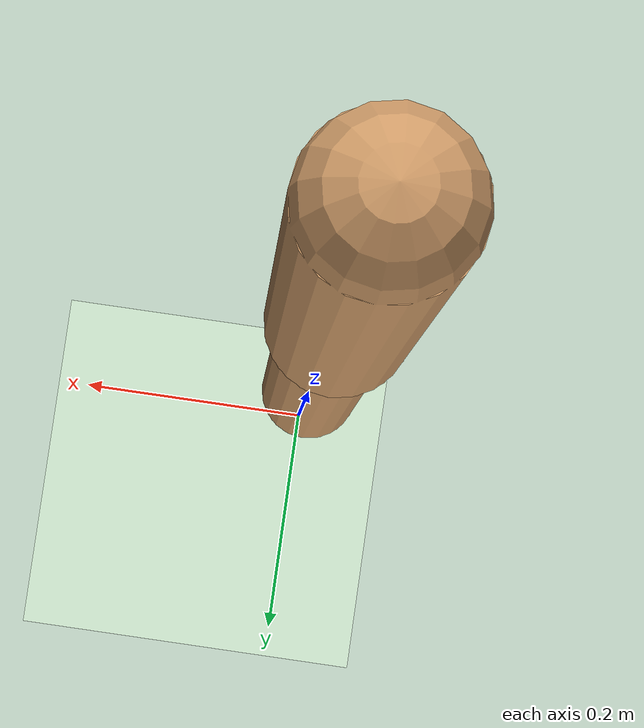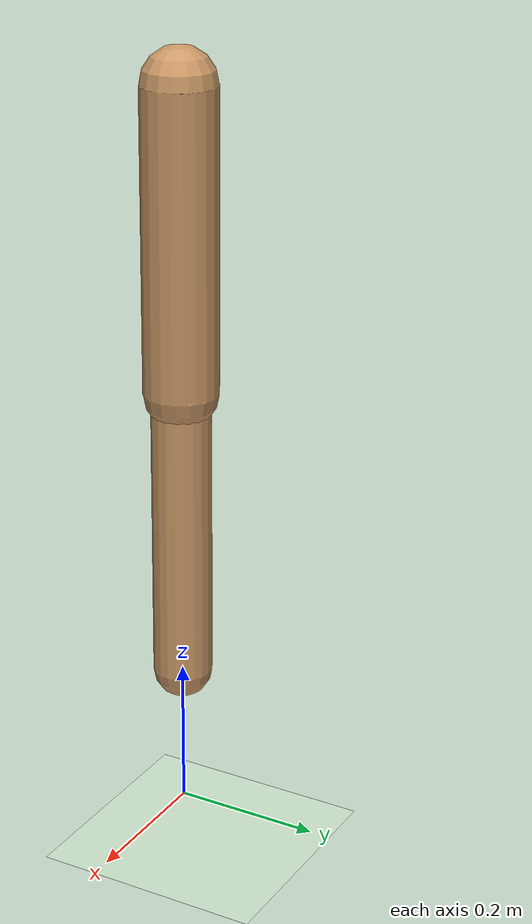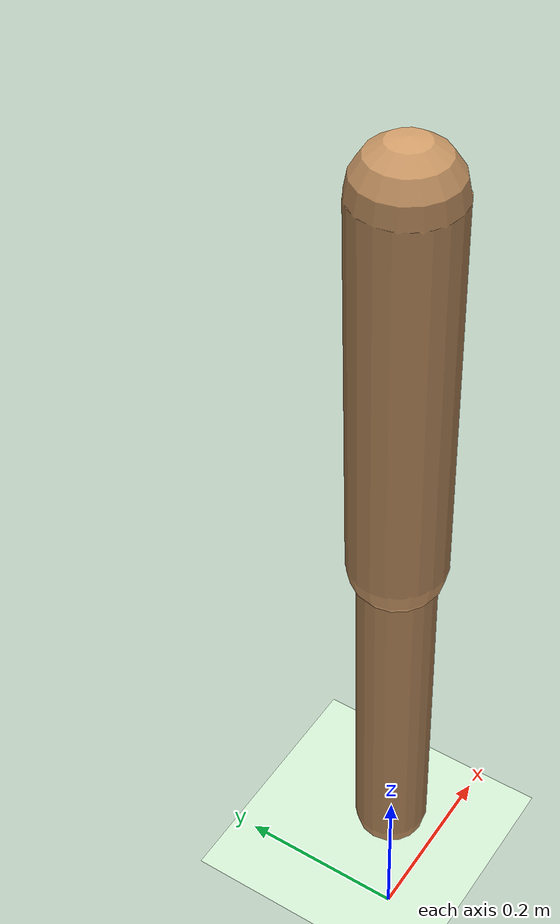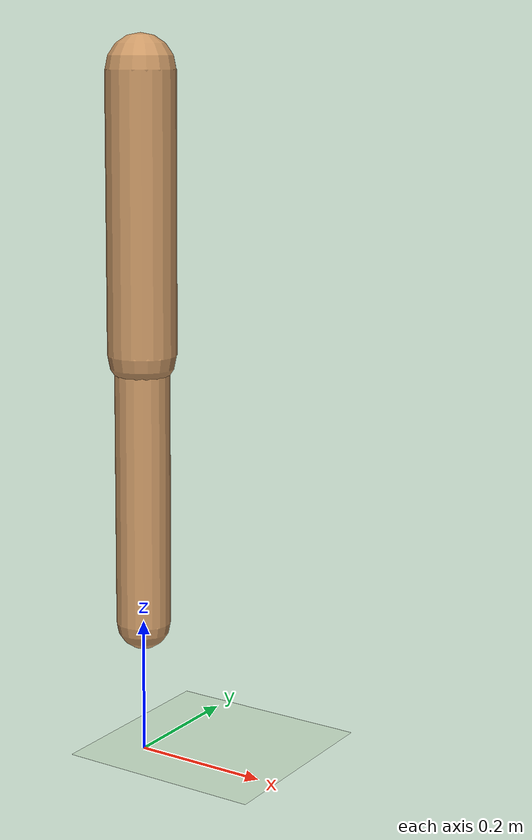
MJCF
<mujoco model="bipedal">
  <compiler angle="degree" coordinate="global" inertiafromgeom="true"/>
  <default>
    <joint armature="0.01" damping=".1" limited="true"/>
    <geom conaffinity="0" condim="3" contype="1" density="1000" friction="2.5 0.1 0.1" rgba="0.8 0.6 .4 1"/>
  </default>
  <option integrator="RK4" timestep="0.002"/>
  <asset>
        <texture type="skybox" builtin="gradient" rgb1=".4 .5 .6" rgb2="0 0 0"
            width="30" height="30"/>
        <texture builtin="flat" height="1278" mark="cross" markrgb="1 1 1" name="texgeom" random="0.01" rgb1="0.8 0.6 0.4" rgb2="0.8 0.6 0.4" type="cube" width="127"/>
        <texture builtin="checker" height="30" name="texplane" rgb1="0 0 0" rgb2="0.8 0.8 0.8" type="2d" width="30"/>
        <material name="MatPlane" reflectance="0.274" shininess="1" specular="1" texrepeat="60 60" texture="texplane"/>
        <material name="geom" texture="texgeom" texuniform="true"/>
  </asset>
  <worldbody>
    <light cutoff="30" diffuse="1 1 1" dir="-0 0 -1.3" directional="true" exponent="1" pos="0 0 1.3" specular=".1 .1 .1"/>
    <geom conaffinity="1" condim="3" name="floor" pos="0 0 0" rgba="0.8 0.9 0.8 1" size="40 40 40" type="plane" material="MatPlane"/>

    <body name="hip" pos="0 0 1.0">
      <camera name="track" mode="trackcom" pos="0 -3 1" xyaxes="1 0 0 0 0 1"/>
      <joint armature="0" axis="1 0 0" damping="0" limited="false" name="rootx" pos="0 0 0" stiffness="0" type="slide"/>
      <joint armature="0" axis="0 0 1" damping="0" limited="false" name="rootz" pos="0 0 0" ref="1.0" stiffness="0" type="slide"/>
      <joint armature="0" axis="0 1 0" damping="0" limited="false" name="rooty" pos="0 0 1.0" stiffness="0" type="hinge"/>
      <geom friction="0.9" name="hip_geom" pos="0 0 1.0" size="0.03" type="sphere"/>

      <body name="thigh" pos="0 0 0.6">
        <joint axis="0 -1 0" damping="2" name="thigh_joint" pos="0 0 1.0" range="-90 90" type="hinge"/>
        <geom friction="0.9" fromto="0 0 1.0 0 0 0.6" name="thigh_geom" size="0.05" type="capsule"/>

        <body name="leg" pos="0 0 0.2">
        <joint axis="0 0 -1" name="leg_joint" pos="0 0 0.6" range="-0.1 0.1"  type="slide"/>
        <geom friction="0.9" fromto="0 0 0.8 0 0 0.2" name="leg_geom" size="0.04" type="capsule"/>

        </body>
      </body>

      <body name="thigh_left" pos="0 0 0.6">
        <joint axis="0 -1 0" damping="2" name="thigh_left_joint" pos="0 0 1.0" range="-90 90" type="hinge"/>
        <geom friction="0.9" fromto="0 0 1.0 0 0 0.6" name="thigh_left_geom" rgba = "0 0 1 1" size="0.05" type="capsule"/>

        <body name="leg_left" pos="0 0 0.2">
        <joint axis="0 0 -1" name="leg_left_joint" pos="0 0 0.6" range="-0.1 0.1"  type="slide"/>
        <geom friction="0.9" fromto="0 0 0.8 0 0 0.2" name="leg_left_geom" rgba = "0 0 1 1" size="0.04" type="capsule"/>

        </body>
      </body>

    </body>
  </worldbody>

  <actuator>
    <motor joint = "thigh_joint" ctrllimited="true" ctrlrange="-1.0 1.0" gear="100" name = "right"/>
    <motor joint = "thigh_left_joint" ctrllimited="true" ctrlrange="-1.0 1.0" gear="100" name = "left"/>
    <motor joint = "leg_joint" ctrllimited="true" ctrlrange="-1.0 1.0" gear="250" name = "slide"/>
    <motor joint = "leg_left_joint" ctrllimited="true" ctrlrange="-1.0 1.0" gear="250" name = "slide_2"/>
  </actuator>

</mujoco>
